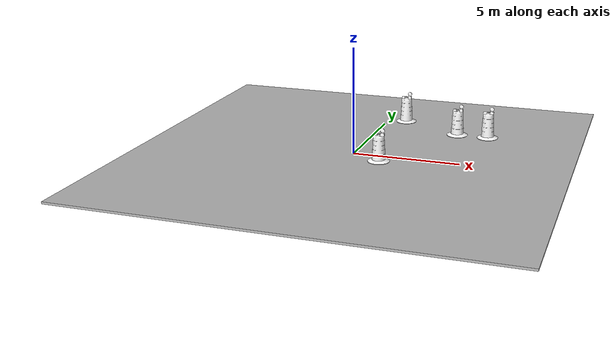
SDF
<?xml version="1.0" ?>
<sdf version="1.6">
  <world name="small_course">

    <physics type="ode">
      <max_step_size>0.001</max_step_size>
      <real_time_update_rate>1000</real_time_update_rate>
    </physics>

    <!-- Sun -->
    <light type="directional" name="sun">
      <cast_shadows>true</cast_shadows>
      <pose>0 0 10 0 0 0</pose>
      <diffuse>1 1 1 1</diffuse>
      <specular>0.2 0.2 0.2 1</specular>
      <direction>-0.5 0.1 -0.9</direction>
    </light>

    <!-- Static Floor -->
    <include>
      <uri>model://floor</uri> <!-- Looks in GZ_SIM_RESOURCE_PATH -->
      <pose>0 0 0 0 0 0</pose>         <!-- Center at 0,0,0 -->
    </include>

    <include>
      <name>barrel_0</name>
      <uri>model://construction_barrel</uri>
      <pose>1 5.5 0.1 0 0 0</pose>
    </include>

    <include>
      <name>barrel_1</name>
      <uri>model://construction_barrel</uri>
      <pose>5.5 4 0.1 0 0 0</pose>
    </include>

    <include>
      <name>barrel_2</name>
      <uri>model://construction_barrel</uri>
      <pose>4 4 0.1 0 0 0</pose>
    </include>

    <include>
      <name>barrel_3</name>
      <uri>model://construction_barrel</uri>
      <pose>1.5 -1 0.1 0 0 0</pose>
    </include>

    <gui fullscreen='0'>
    <!-- Set where gui camera starts at-->
      <camera name='user_camera'>
        <pose>-4 -16 4 0 0.3 1.2</pose>
        <view_controller>orbit</view_controller>
      </camera>
    </gui>
  </world>
</sdf>

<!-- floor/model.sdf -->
<sdf version="1.6">
  <model name="custom_course">
    <static>true</static>
    <link name="link">
      <collision name="collision">
        <geometry>
          <box>
            <size>20 20 0.1</size> <!-- 20m x 20m wide, 10cm thick -->
          </box>
        </geometry>
      </collision>
      <visual name="visual">
        <geometry>
          <box>
            <size>20 20 0.1</size>
          </box>
        </geometry>
        <material>
          <script>
            <uri>model://floor/materials/scripts</uri>
            <uri>model://floor/materials/textures</uri>
            <name>CustomCourse/Diffuse</name>
          </script>
        </material>
      </visual>
    </link>
  </model>
</sdf>

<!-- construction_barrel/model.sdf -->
<sdf version="1.5">
  <model name="Construction Barrel">
    <link name="link">
      <inertial>
        <pose>0 0 0.4 0 0 0</pose>
        <mass>500</mass>
        <inertia>
          <ixx>51.2096</ixx>
          <iyy>51.2096</iyy>
          <izz>25</izz>
          <ixy>0</ixy>
          <ixz>0</ixz>
        </inertia>
      </inertial>
      <collision name="collision">
        <geometry>
          <mesh>
            <uri>model://construction_barrel/meshes/construction_barrel.dae</uri>
          </mesh>
        </geometry>
      </collision>
      <visual name="visual">
        <geometry>
          <mesh>
            <uri>model://construction_barrel/meshes/construction_barrel.dae</uri>
          </mesh>
        </geometry>
        <material>
          <ambient>1 1 1 1</ambient>
          <diffuse>1 1 1 1</diffuse>
          <specular>0.1 0.1 0.1 1</specular>
          <pbr>
            <metal>
              <!-- IMPORTANT: Ensure this path matches the texture file in your folder -->
              <albedo_map>model://construction_barrel/materials/textures/Construction_Barrel_Diffuse.png</albedo_map>
              <roughness>0.3</roughness> <!-- Make it shiny plastic -->
              <metalness>0.0</metalness> <!-- Plastic is not metal -->
            </metal>
          </pbr>
        </material>
      </visual>
    </link>
  </model>
</sdf>
